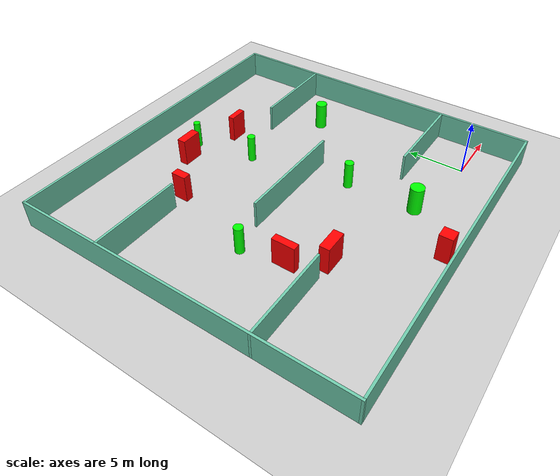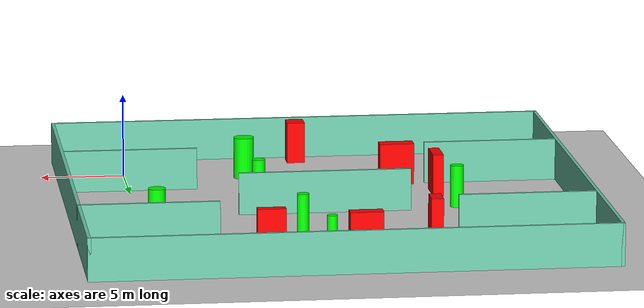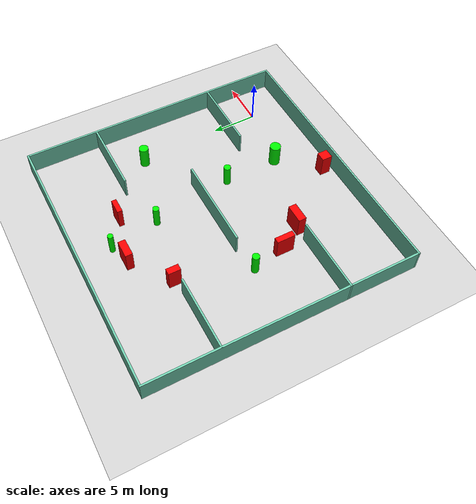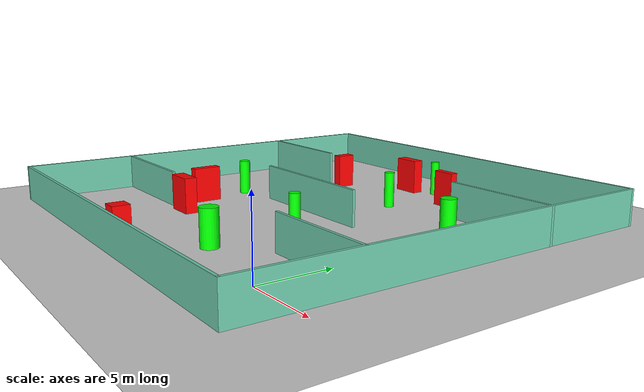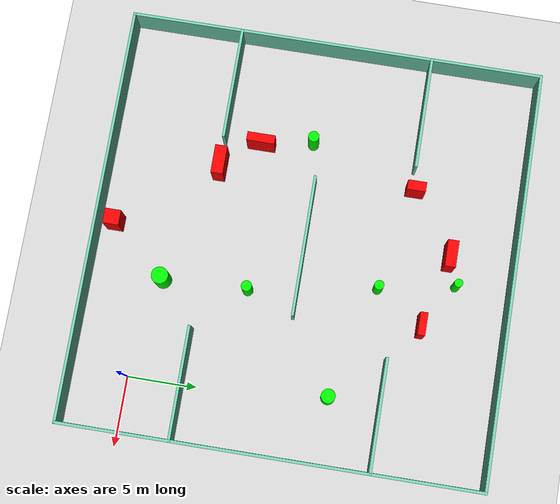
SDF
<sdf version="1.7">
 <world name="default">
  <light name="sun" type="directional">
   <pose>0 0 10 0 -0 0</pose>
   <diffuse>0.8 0.8 0.8 1</diffuse>
   <specular>0.2 0.2 0.2 1</specular>
   <attenuation>
    <range>1000</range>
    <constant>0.9</constant>
    <linear>0.01</linear>
    <quadratic>0.001</quadratic>
   </attenuation>
   <direction>-0.5 0.1 -0.9</direction>
   <spot><inner_angle>0</inner_angle><outer_angle>0</outer_angle><falloff>0</falloff></spot>
  </light>
  <model name="ground_plane">
   <static>1</static>
   <link name="link">
    <collision name="collision">
     <geometry><plane><normal>0 0 1</normal><size>100 100</size></plane></geometry>
     <surface>
      <contact><collide_bitmask>65535</collide_bitmask></contact>
      <friction><ode><mu>100</mu><mu2>50</mu2></ode></friction>
     </surface>
    </collision>
    <visual name="visual">
     <cast_shadows>0</cast_shadows>
     <geometry><plane><normal>0 0 1</normal><size>100 100</size></plane></geometry>
     <material>
      <script><uri>file://media/materials/scripts/gazebo.material</uri><name>Gazebo/Grey</name></script>
     </material>
    </visual>
   </link>
  </model>
  <gravity>0 0 -9.8</gravity>
  <magnetic_field>6e-06 2.3e-05 -4.2e-05</magnetic_field>
  <atmosphere type="adiabatic"/>
  <physics type="ode">
   <max_step_size>0.001</max_step_size>
   <real_time_factor>1</real_time_factor>
   <real_time_update_rate>1000</real_time_update_rate>
  </physics>
  <scene><ambient>0.4 0.4 0.4 1</ambient><background>0.7 0.7 0.7 1</background><shadows>1</shadows></scene>
  <spherical_coordinates>
   <surface_model>EARTH_WGS84</surface_model>
   <latitude_deg>0</latitude_deg>
   <longitude_deg>0</longitude_deg>
   <elevation>0</elevation>
   <heading_deg>0</heading_deg>
  </spherical_coordinates>
  <model name="my_base_walls">
   <link name="Wall_10">
    <collision name="Wall_10_Collision">
     <geometry><box><size>8.2 0.2 2.5</size></box></geometry>
     <pose>0 0 1.25 0 -0 0</pose>
    </collision>
    <visual name="Wall_10_Visual">
     <pose>0 0 1.25 0 -0 0</pose>
     <geometry><box><size>8.2 0.2 2.5</size></box></geometry>
     <material>
      <script><uri>file://media/materials/scripts/gazebo.material</uri><name>Gazebo/Grey</name></script>
      <ambient>0.435294 0.796078 0.67451 1</ambient>
     </material>
     <meta><layer>0</layer></meta>
    </visual>
    <pose>-11 -7 0 0 -0 0</pose>
   </link>
   <link name="Wall_12">
    <collision name="Wall_12_Collision">
     <geometry><box><size>8.2 0.2 2.5</size></box></geometry>
     <pose>0 0 1.25 0 -0 0</pose>
    </collision>
    <visual name="Wall_12_Visual">
     <pose>0 0 1.25 0 -0 0</pose>
     <geometry><box><size>8.2 0.2 2.5</size></box></geometry>
     <material>
      <script><uri>file://media/materials/scripts/gazebo.material</uri><name>Gazebo/Grey</name></script>
      <ambient>0.435294 0.796078 0.67451 1</ambient>
     </material>
     <meta><layer>0</layer></meta>
    </visual>
    <pose>-11 7 0 0 -0 0</pose>
   </link>
   <link name="Wall_14">
    <collision name="Wall_14_Collision">
     <geometry><box><size>8.2 0.2 2.5</size></box></geometry>
     <pose>0 0 1.25 0 -0 0</pose>
    </collision>
    <visual name="Wall_14_Visual">
     <pose>0 0 1.25 0 -0 0</pose>
     <geometry><box><size>8.2 0.2 2.5</size></box></geometry>
     <material>
      <script><uri>file://media/materials/scripts/gazebo.material</uri><name>Gazebo/Grey</name></script>
      <ambient>0.435294 0.796078 0.67451 1</ambient>
     </material>
     <meta><layer>0</layer></meta>
    </visual>
    <pose>11 7 0 0 -0 3.14159</pose>
   </link>
   <link name="Wall_16">
    <collision name="Wall_16_Collision">
     <geometry><box><size>10.2 0.2 2.5</size></box></geometry>
     <pose>0 0 1.25 0 -0 0</pose>
    </collision>
    <visual name="Wall_16_Visual">
     <pose>0 0 1.25 0 -0 0</pose>
     <geometry><box><size>10.2 0.2 2.5</size></box></geometry>
     <material>
      <script><uri>file://media/materials/scripts/gazebo.material</uri><name>Gazebo/Grey</name></script>
      <ambient>0.435294 0.796078 0.67451 1</ambient>
     </material>
     <meta><layer>0</layer></meta>
    </visual>
    <pose>0 0 0 0 -0 3.14159</pose>
   </link>
   <link name="Wall_2">
    <collision name="Wall_2_Collision">
     <geometry><box><size>30.2 0.2 2.5</size></box></geometry>
     <pose>0 0 1.25 0 -0 0</pose>
    </collision>
    <visual name="Wall_2_Visual">
     <pose>0 0 1.25 0 -0 0</pose>
     <geometry><box><size>30.2 0.2 2.5</size></box></geometry>
     <material>
      <script><uri>file://media/materials/scripts/gazebo.material</uri><name>Gazebo/Grey</name></script>
      <ambient>0.435294 0.796078 0.67451 1</ambient>
     </material>
     <meta><layer>0</layer></meta>
    </visual>
    <pose>0 -15 0 0 -0 3.14159</pose>
   </link>
   <link name="Wall_3">
    <collision name="Wall_3_Collision">
     <geometry><box><size>30.2 0.2 2.5</size></box></geometry>
     <pose>0 0 1.25 0 -0 0</pose>
    </collision>
    <visual name="Wall_3_Visual">
     <pose>0 0 1.25 0 -0 0</pose>
     <geometry><box><size>30.2 0.2 2.5</size></box></geometry>
     <material>
      <script><uri>file://media/materials/scripts/gazebo.material</uri><name>Gazebo/Grey</name></script>
      <ambient>0.435294 0.796078 0.67451 1</ambient>
     </material>
     <meta><layer>0</layer></meta>
    </visual>
    <pose>-15 0 0 0 -0 1.5708</pose>
   </link>
   <link name="Wall_4">
    <collision name="Wall_4_Collision">
     <geometry><box><size>30.2 0.2 2.5</size></box></geometry>
     <pose>0 0 1.25 0 -0 0</pose>
    </collision>
    <visual name="Wall_4_Visual">
     <pose>0 0 1.25 0 -0 0</pose>
     <geometry><box><size>30.2 0.2 2.5</size></box></geometry>
     <material>
      <script><uri>file://media/materials/scripts/gazebo.material</uri><name>Gazebo/Grey</name></script>
      <ambient>0.435294 0.796078 0.67451 1</ambient>
     </material>
     <meta><layer>0</layer></meta>
    </visual>
    <pose>0 15 0 0 -0 0</pose>
   </link>
   <link name="Wall_6">
    <collision name="Wall_6_Collision">
     <geometry><box><size>30.2 0.2 2.5</size></box></geometry>
     <pose>0 0 1.25 0 -0 0</pose>
    </collision>
    <visual name="Wall_6_Visual">
     <pose>0 0 1.25 0 -0 0</pose>
     <geometry><box><size>30.2 0.2 2.5</size></box></geometry>
     <material>
      <script><uri>file://media/materials/scripts/gazebo.material</uri><name>Gazebo/Grey</name></script>
      <ambient>0.435294 0.796078 0.67451 1</ambient>
     </material>
     <meta><layer>0</layer></meta>
    </visual>
    <pose>15 0 0 0 -0 1.5708</pose>
   </link>
   <link name="Wall_8">
    <collision name="Wall_8_Collision">
     <geometry><box><size>8.2 0.2 2.5</size></box></geometry>
     <pose>0 0 1.25 0 -0 0</pose>
    </collision>
    <visual name="Wall_8_Visual">
     <pose>0 0 1.25 0 -0 0</pose>
     <geometry><box><size>8.2 0.2 2.5</size></box></geometry>
     <material>
      <script><uri>file://media/materials/scripts/gazebo.material</uri><name>Gazebo/Grey</name></script>
      <ambient>0.435294 0.796078 0.67451 1</ambient>
     </material>
     <meta><layer>0</layer></meta>
    </visual>
    <pose>11 -7 0 0 -0 3.14159</pose>
   </link>
   <static>1</static>
   <pose>-11 11 0 0 -0 0</pose>
  </model>
  <model name="cylinder1">
   <static>1</static>
   <link name="link">
    <inertial>
     <mass>1</mass>
     <inertia><ixx>0.5</ixx><ixy>0</ixy><ixz>0</ixz><iyy>0.5</iyy><iyz>0</iyz><izz>1</izz></inertia>
    </inertial>
    <collision name="collision">
     <geometry><cylinder><radius>0.39573423089329096</radius><length>2.5</length></cylinder></geometry>
    </collision>
    <visual name="visual">
     <geometry><cylinder><radius>0.39573423089329096</radius><length>2.5</length></cylinder></geometry>
     <material>
      <ambient>0 1 0 1</ambient>
      <diffuse>0 1 0 1</diffuse>
      <specular>0.1 0.1 0.1 1</specular>
      <emissive>0 0 0 0</emissive>
     </material>
    </visual>
   </link>
   <pose>-18.92804088222848 10.422510906160369 1.25 0 0 0</pose>
  </model>
  <model name="cylinder2">
   <static>1</static>
   <link name="link">
    <inertial>
     <mass>1</mass>
     <inertia><ixx>0.5</ixx><ixy>0</ixy><ixz>0</ixz><iyy>0.5</iyy><iyz>0</iyz><izz>1</izz></inertia>
    </inertial>
    <collision name="collision">
     <geometry><cylinder><radius>0.30169710927576454</radius><length>2.5</length></cylinder></geometry>
    </collision>
    <visual name="visual">
     <geometry><cylinder><radius>0.30169710927576454</radius><length>2.5</length></cylinder></geometry>
     <material>
      <ambient>0 1 0 1</ambient>
      <diffuse>0 1 0 1</diffuse>
      <specular>0.1 0.1 0.1 1</specular>
      <emissive>0 0 0 0</emissive>
     </material>
    </visual>
   </link>
   <pose>-10.046083985765115 22.1764994296974 1.25 0 0 0</pose>
  </model>
  <model name="cylinder3">
   <static>1</static>
   <link name="link">
    <inertial>
     <mass>1</mass>
     <inertia><ixx>0.5</ixx><ixy>0</ixy><ixz>0</ixz><iyy>0.5</iyy><iyz>0</iyz><izz>1</izz></inertia>
    </inertial>
    <collision name="collision">
     <geometry><cylinder><radius>0.5130505255658531</radius><length>2.5</length></cylinder></geometry>
    </collision>
    <visual name="visual">
     <geometry><cylinder><radius>0.5130505255658531</radius><length>2.5</length></cylinder></geometry>
     <material>
      <ambient>0 1 0 1</ambient>
      <diffuse>0 1 0 1</diffuse>
      <specular>0.1 0.1 0.1 1</specular>
      <emissive>0 0 0 0</emissive>
     </material>
    </visual>
   </link>
   <pose>-0.7890371702631782 14.349086658903616 1.25 0 0 0</pose>
  </model>
  <model name="cylinder4">
   <static>1</static>
   <link name="link">
    <inertial>
     <mass>1</mass>
     <inertia><ixx>0.5</ixx><ixy>0</ixy><ixz>0</ixz><iyy>0.5</iyy><iyz>0</iyz><izz>1</izz></inertia>
    </inertial>
    <collision name="collision">
     <geometry><cylinder><radius>0.34602134707595833</radius><length>2.5</length></cylinder></geometry>
    </collision>
    <visual name="visual">
     <geometry><cylinder><radius>0.34602134707595833</radius><length>2.5</length></cylinder></geometry>
     <material>
      <ambient>0 1 0 1</ambient>
      <diffuse>0 1 0 1</diffuse>
      <specular>0.1 0.1 0.1 1</specular>
      <emissive>0 0 0 0</emissive>
     </material>
    </visual>
   </link>
   <pose>-9.0188927248679 16.67745262429411 1.25 0 0 0</pose>
  </model>
  <model name="cylinder5">
   <static>1</static>
   <link name="link">
    <inertial>
     <mass>1</mass>
     <inertia><ixx>0.5</ixx><ixy>0</ixy><ixz>0</ixz><iyy>0.5</iyy><iyz>0</iyz><izz>1</izz></inertia>
    </inertial>
    <collision name="collision">
     <geometry><cylinder><radius>0.3870711957613052</radius><length>2.5</length></cylinder></geometry>
    </collision>
    <visual name="visual">
     <geometry><cylinder><radius>0.3870711957613052</radius><length>2.5</length></cylinder></geometry>
     <material>
      <ambient>0 1 0 1</ambient>
      <diffuse>0 1 0 1</diffuse>
      <specular>0.1 0.1 0.1 1</specular>
      <emissive>0 0 0 0</emissive>
     </material>
    </visual>
   </link>
   <pose>-7.46468252347389 7.468375209274177 1.25 0 0 0</pose>
  </model>
  <model name="cylinder6">
   <static>1</static>
   <link name="link">
    <inertial>
     <mass>1</mass>
     <inertia><ixx>0.5</ixx><ixy>0</ixy><ixz>0</ixz><iyy>0.5</iyy><iyz>0</iyz><izz>1</izz></inertia>
    </inertial>
    <collision name="collision">
     <geometry><cylinder><radius>0.6056667004436085</radius><length>2.5</length></cylinder></geometry>
    </collision>
    <visual name="visual">
     <geometry><cylinder><radius>0.6056667004436085</radius><length>2.5</length></cylinder></geometry>
     <material>
      <ambient>0 1 0 1</ambient>
      <diffuse>0 1 0 1</diffuse>
      <specular>0.1 0.1 0.1 1</specular>
      <emissive>0 0 0 0</emissive>
     </material>
    </visual>
   </link>
   <pose>-7.230283789625391 1.3102356353740854 1.25 0 0 0</pose>
  </model>
  <model name="box1">
   <static>1</static>
   <link name="link">
    <inertial>
     <mass>1</mass>
     <inertia><ixx>0.083</ixx><ixy>0</ixy><ixz>0</ixz><iyy>0.083</iyy><iyz>0</iyz><izz>0.083</izz></inertia>
    </inertial>
    <collision name="collision">
     <geometry><box><size>1.0834557686763437 1.1546178256490465 2.5</size></box></geometry>
    </collision>
    <visual name="visual">
     <geometry><box><size>1.0834557686763437 1.1546178256490465 2.5</size></box></geometry>
     <material>
      <ambient>1 0 0 1</ambient>
      <diffuse>1 0 0 1</diffuse>
      <specular>0.1 0.1 0.1 1</specular>
      <emissive>0 0 0 0</emissive>
     </material>
    </visual>
    <sensor name="my_contact" type="contact">
     <contact><collision>box_collision</collision><topic>__default_topic__</topic></contact>
    </sensor>
   </link>
   <pose>-10.838366635395932 -2.8145903449844307 1.25 0 0 0</pose>
  </model>
  <model name="box2">
   <static>1</static>
   <link name="link">
    <inertial>
     <mass>1</mass>
     <inertia><ixx>0.083</ixx><ixy>0</ixy><ixz>0</ixz><iyy>0.083</iyy><iyz>0</iyz><izz>0.083</izz></inertia>
    </inertial>
    <collision name="collision">
     <geometry><box><size>0.6280040607793206 2.0288190452808017 2.5</size></box></geometry>
    </collision>
    <visual name="visual">
     <geometry><box><size>0.6280040607793206 2.0288190452808017 2.5</size></box></geometry>
     <material>
      <ambient>1 0 0 1</ambient>
      <diffuse>1 0 0 1</diffuse>
      <specular>0.1 0.1 0.1 1</specular>
      <emissive>0 0 0 0</emissive>
     </material>
    </visual>
    <sensor name="my_contact" type="contact">
     <contact><collision>box_collision</collision><topic>__default_topic__</topic></contact>
    </sensor>
   </link>
   <pose>-18.230481421024898 6.688626681046625 1.25 0 0 0</pose>
  </model>
  <model name="box3">
   <static>1</static>
   <link name="link">
    <inertial>
     <mass>1</mass>
     <inertia><ixx>0.083</ixx><ixy>0</ixy><ixz>0</ixz><iyy>0.083</iyy><iyz>0</iyz><izz>0.083</izz></inertia>
    </inertial>
    <collision name="collision">
     <geometry><box><size>0.703673470785722 1.343797575993331 2.5</size></box></geometry>
    </collision>
    <visual name="visual">
     <geometry><box><size>0.703673470785722 1.343797575993331 2.5</size></box></geometry>
     <material>
      <ambient>1 0 0 1</ambient>
      <diffuse>1 0 0 1</diffuse>
      <specular>0.1 0.1 0.1 1</specular>
      <emissive>0 0 0 0</emissive>
     </material>
    </visual>
    <sensor name="my_contact" type="contact">
     <contact><collision>box_collision</collision><topic>__default_topic__</topic></contact>
    </sensor>
   </link>
   <pose>-16.52912311221075 18.279646971740718 1.25 0 0 0</pose>
  </model>
  <model name="box4">
   <static>1</static>
   <link name="link">
    <inertial>
     <mass>1</mass>
     <inertia><ixx>0.083</ixx><ixy>0</ixy><ixz>0</ixz><iyy>0.083</iyy><iyz>0</iyz><izz>0.083</izz></inertia>
    </inertial>
    <collision name="collision">
     <geometry><box><size>1.64450276956401 0.5399545024127965 2.5</size></box></geometry>
    </collision>
    <visual name="visual">
     <geometry><box><size>1.64450276956401 0.5399545024127965 2.5</size></box></geometry>
     <material>
      <ambient>1 0 0 1</ambient>
      <diffuse>1 0 0 1</diffuse>
      <specular>0.1 0.1 0.1 1</specular>
      <emissive>0 0 0 0</emissive>
     </material>
    </visual>
    <sensor name="my_contact" type="contact">
     <contact><collision>box_collision</collision><topic>__default_topic__</topic></contact>
    </sensor>
   </link>
   <pose>-6.813389416233937 20.095278711659684 1.25 0 0 0</pose>
  </model>
  <model name="box5">
   <static>1</static>
   <link name="link">
    <inertial>
     <mass>1</mass>
     <inertia><ixx>0.083</ixx><ixy>0</ixy><ixz>0</ixz><iyy>0.083</iyy><iyz>0</iyz><izz>0.083</izz></inertia>
    </inertial>
    <collision name="collision">
     <geometry><box><size>2.0650533593847253 0.8751299603498794 2.5</size></box></geometry>
    </collision>
    <visual name="visual">
     <geometry><box><size>2.0650533593847253 0.8751299603498794 2.5</size></box></geometry>
     <material>
      <ambient>1 0 0 1</ambient>
      <diffuse>1 0 0 1</diffuse>
      <specular>0.1 0.1 0.1 1</specular>
      <emissive>0 0 0 0</emissive>
     </material>
    </visual>
    <sensor name="my_contact" type="contact">
     <contact><collision>box_collision</collision><topic>__default_topic__</topic></contact>
    </sensor>
   </link>
   <pose>-16.192443107672872 3.9844809965459396 1.25 0 0 0</pose>
  </model>
  <model name="box6">
   <static>1</static>
   <link name="link">
    <inertial>
     <mass>1</mass>
     <inertia><ixx>0.083</ixx><ixy>0</ixy><ixz>0</ixz><iyy>0.083</iyy><iyz>0</iyz><izz>0.083</izz></inertia>
    </inertial>
    <collision name="collision">
     <geometry><box><size>1.9228235800852387 0.7841907531521672 2.5</size></box></geometry>
    </collision>
    <visual name="visual">
     <geometry><box><size>1.9228235800852387 0.7841907531521672 2.5</size></box></geometry>
     <material>
      <ambient>1 0 0 1</ambient>
      <diffuse>1 0 0 1</diffuse>
      <specular>0.1 0.1 0.1 1</specular>
      <emissive>0 0 0 0</emissive>
     </material>
    </visual>
    <sensor name="my_contact" type="contact">
     <contact><collision>box_collision</collision><topic>__default_topic__</topic></contact>
    </sensor>
   </link>
   <pose>-12.082335793602983 21.41767520293439 1.25 0 0 0</pose>
  </model>
 </world>
</sdf>
